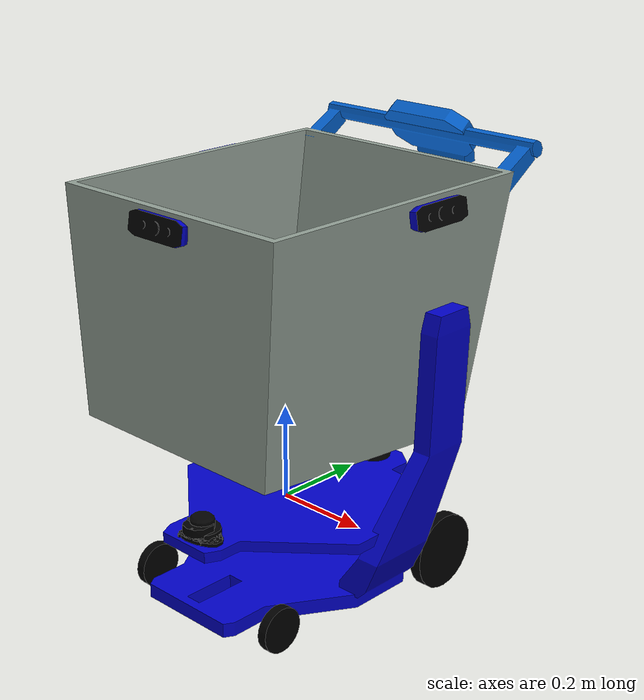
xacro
<?xml version="1.0"?>
<robot name="automatic_cart" xmlns:xacro="http://ros.org/wiki/xacro">

  <!-- Colors -->
  <material name="black">
    <color rgba="0 0 0 1"/>
  </material>

  <!-- Robot params -->
  <xacro:property name="baseshift" value="0.2" />
  <xacro:property name="wheellen" value="0.025" />
  <xacro:property name="wheelrad" value="0.08" />
  <xacro:property name="wheellen2" value="0.02" />
  <xacro:property name="wheelrad2" value="0.047" />
  <xacro:property name="xwheel" value="0.25" />
  <xacro:property name="ywheel" value="0.2" />
  <xacro:property name="zwheel" value="-0.11" />
  <xacro:property name="xwheel2" value="0.18" />
  <xacro:property name="ywheel2" value="-0.2" />
  <xacro:property name="zwheel2" value="-0.15" />
  <xacro:property name="pi" value="3.1415" />

  <!-- Sensor params -->
  <xacro:arg name="laser_visual" default="false"/>
  <xacro:arg name="imu_visual"   default="false"/>

  <!-- Physic params -->
  <xacro:macro name="default_inertial" params="mass">
    <inertial>
      <mass value="${mass}" />
      <inertia ixx="1.0" ixy="0.0" ixz="0.0" iyy="1.0" iyz="0.0" izz="1.0" />
    </inertial>
  </xacro:macro>

  <xacro:macro name="wheel_inertial" params="mass">
    <inertial>
      <mass value="${mass}" />
      <inertia ixx="0.0" ixy="0.0" ixz="0.0" iyy="1.0" iyz="0.0" izz="1.0" />
    </inertial>
  </xacro:macro>

  <!-- Robot Design -->
  <link name="base_footprint"/>

  <link name="base_link">
    <visual>
      <geometry>
        <mesh filename="package://automatic_cart/models/shopping_cart/meshes/shopping_cart_base.dae"/>
      </geometry>
      <origin rpy="0 0 ${pi}" xyz="0.0 0.0 ${baseshift}"/>
    </visual>
    <collision>
      <geometry>
        <mesh filename="package://automatic_cart/models/shopping_cart/meshes/shopping_cart_base.dae"/>
      </geometry>
      <origin rpy="0 0 ${pi}" xyz="0.0 0.0 ${baseshift}"/>
    </collision>
    <xacro:default_inertial mass="10"/>
  </link>

  <joint name="base_joint" type="fixed">
    <parent link="base_footprint"/>
    <child link="base_link"/>
    <origin xyz="0.0 0.0 0.0"/>
  </joint>

  <link name="basket">
    <visual>
      <geometry>
        <mesh filename="package://automatic_cart/models/shopping_cart/meshes/shopping_cart_basket.dae"/>
      </geometry>
      <origin rpy="0 0 ${pi}" xyz="0.0 0.0 ${-baseshift}"/>
    </visual>
    <collision>
      <geometry>
        <mesh filename="package://automatic_cart/models/shopping_cart/meshes/shopping_cart_basket.dae"/>
      </geometry>
      <origin rpy="0 0 ${pi}" xyz="0.0 0.0 ${-baseshift}"/>
    </collision>
    <xacro:default_inertial mass="4"/>
  </link>

  <joint name="base_to_basket" type="prismatic">
    <axis xyz="0 0 1"/>
    <limit effort="1000.0" lower="-0.07" upper="0.07" velocity="0.5"/>
    <parent link="base_link"/>
    <child link="basket"/>
    <origin xyz="0.0 0.0 ${2*baseshift}"/>
  </joint>

  <transmission name="base_to_basket_trans">
    <type>transmission_interface/SimpleTransmission</type>
    <actuator name="base_to_basket_motor">
      <mechanicalReduction>1</mechanicalReduction>
    </actuator>
    <joint name="base_to_basket">
      <hardwareInterface>hardware_interface/PositionJointInterface</hardwareInterface>
    </joint>
  </transmission>

  <!-- Wheels -->
  <xacro:macro name="wheel" params="prefix reflect">
  <link name="${prefix}_wheel">
    <visual>
      <origin rpy="0 ${pi/2} 0" xyz="0 0 0"/>
      <geometry>
	<cylinder length="${wheellen}" radius="${wheelrad}"/>
      </geometry>
      <material name="black"/>
    </visual>
    <collision>
      <origin rpy="0 ${pi/2} 0" xyz="0 0 0"/>
      <geometry>
	<cylinder length="${wheellen}" radius="${wheelrad}"/>
      </geometry>
    </collision>
    <xacro:wheel_inertial mass="2"/>
  </link>
  <joint name="${prefix}_wheel_joint" type="continuous">
    <axis rpy="0 0 0" xyz="1 0 0"/>
    <parent link="base_link"/>
    <child link="${prefix}_wheel"/>
    <origin rpy="0 0 0" xyz="${xwheel*reflect} ${ywheel} ${zwheel}"/>
  </joint>

    <!-- This block provides the simulator (Gazebo) with information on a few additional
    physical properties. See http://gazebosim.org/tutorials/?tut=ros_urdf for more-->
    <gazebo reference="${prefix}_wheel">
      <mu1 value="200.0"/>
      <mu2 value="100.0"/>
      <kp value="10000000.0" />
      <kd value="1.0" />
      <min_depth value="0.02" />
      <material>Gazebo/Grey</material>
    </gazebo>

    <!-- This block connects the wheel joint to an actuator (motor), which informs both
    simulation and visualization of the robot -->
    <transmission name="${prefix}_wheel_trans">
      <type>transmission_interface/SimpleTransmission</type>
      <actuator name="${prefix}_wheel_motor">
        <mechanicalReduction>1</mechanicalReduction>
      </actuator>
      <joint name="${prefix}_wheel_joint">
        <hardwareInterface>hardware_interface/VelocityJointInterface</hardwareInterface>
      </joint>
    </transmission>
  </xacro:macro>
  <xacro:wheel prefix="right" reflect="-1"/>
  <xacro:wheel prefix="left" reflect="1"/>

  <!-- Front Wheel -->
  <xacro:macro name="wheel_front" params="prefix reflect">
  <link name="${prefix}_front_wheel">
    <visual>
      <origin rpy="0 ${pi/2} 0" xyz="0 0 0"/>
      <geometry>
        <cylinder length="${wheellen2}" radius="${wheelrad2}"/>
      </geometry>
      <material name="black"/>
    </visual>
    <collision>
      <origin rpy="0 ${pi/2} 0" xyz="0 0 0"/>
      <geometry>
        <cylinder length="${wheellen2}" radius="${wheelrad2}"/>
      </geometry>
    </collision>
    <xacro:wheel_inertial mass="1"/>
  </link>
  <joint name="${prefix}_front_wheel_joint" type="continuous">
    <axis rpy="0 0 0" xyz="1 0 0"/>
    <parent link="base_link"/>
    <child link="${prefix}_front_wheel"/>
    <origin rpy="0 0 0" xyz="${xwheel2*reflect} ${ywheel2} ${zwheel2}"/>
  </joint>
  <!-- This block provides the simulator (Gazebo) with information on a few additional
    physical properties. See http://gazebosim.org/tutorials/?tut=ros_urdf for more-->
    <gazebo reference="${prefix}_front_wheel">
      <mu1 value="200.0"/>
      <mu2 value="100.0"/>
      <kp value="10000000.0" />
      <kd value="1.0" />
      <material>Gazebo/Grey</material>
    </gazebo>
    <!-- This block connects the wheel joint to an actuator (motor), which informs both
    simulation and visualization of the robot -->
    <transmission name="${prefix}_front_wheel_trans">
      <type>transmission_interface/SimpleTransmission</type>
      <actuator name="${prefix}_front_wheel_motor">
        <mechanicalReduction>1</mechanicalReduction>
      </actuator>
      <joint name="${prefix}_front_wheel_joint">
        <hardwareInterface>hardware_interface/VelocityJointInterface</hardwareInterface>
      </joint>
    </transmission>
   </xacro:macro>
   <xacro:wheel_front prefix="right" reflect="-1"/>
  <xacro:wheel_front prefix="left" reflect="1"/>

<!-- Lidar design -->
<joint name="scan_joint" type="fixed">
    <parent link="base_link"/>
    <child link="base_scan"/>
    <origin xyz="0  ${ywheel2-0.04} ${zwheel2+0.17}" rpy="0 0 0"/>
  </joint>

  <link name="base_scan">
    <visual>
      <origin xyz="0 0 0.0" rpy="0 0 0"/>
      <geometry>
        <mesh filename="package://turtlebot3_description/meshes/sensors/lds.stl" scale="0.001 0.001 0.001"/>
      </geometry>
      <material name="black"/>
    </visual>
  </link>

  <!-- IMU design -->
  <joint name="imu_joint" type="fixed">
    <parent link="base_link"/>
    <child link="imu_link"/>
    <origin xyz="0 0 ${zwheel2+0.17}" rpy="0 0 0"/>
  </joint>

  <link name="imu_link"/>

  <!-- Gazebo plugin for ROS Control -->
  <gazebo>
    <plugin name="gazebo_ros_control" filename="libgazebo_ros_control.so">
      <robotNamespace>/</robotNamespace>
    </plugin>
  </gazebo>

 <!-- Gazebo plugin for Lidar -->
  <gazebo reference="base_scan">
    <material>Gazebo/FlatBlack</material>
    <sensor type="ray" name="lds_lfcd_sensor">
      <pose>0 0 0 0 0 0</pose>
      <visualize>$(arg laser_visual)</visualize>
      <update_rate>5</update_rate>
      <ray>
        <scan>
          <horizontal>
            <samples>360</samples>
            <resolution>1</resolution>
            <min_angle>0.0</min_angle>
            <max_angle>6.28319</max_angle>
          </horizontal>
        </scan>
        <range>
          <min>0.120</min>
          <max>3.5</max>
          <resolution>0.015</resolution>
        </range>
        <noise>
          <type>gaussian</type>
          <mean>0.0</mean>
          <stddev>0.01</stddev>
        </noise>
      </ray>
      <plugin name="gazebo_ros_lds_lfcd_controller" filename="libgazebo_ros_laser.so">
        <topicName>scan</topicName>
        <frameName>base_scan</frameName>
      </plugin>
    </sensor>
  </gazebo>

  <!-- Gazebo plugin for IMU -->
  <gazebo reference="imu_link">
    <sensor type="imu" name="imu">
      <always_on>true</always_on>
      <visualize>$(arg imu_visual)</visualize>
    </sensor>
    <material>Gazebo/FlatBlack</material>
  </gazebo>

  <gazebo>
    <plugin name="imu_plugin" filename="libgazebo_ros_imu.so">
      <alwaysOn>true</alwaysOn>
      <bodyName>imu_link</bodyName>
      <frameName>imu_link</frameName>
      <topicName>imu</topicName>
      <serviceName>imu_service</serviceName>
      <gaussianNoise>0.0</gaussianNoise>
      <updateRate>0</updateRate>
      <imu>
        <noise>
          <type>gaussian</type>
          <rate>
            <mean>0.0</mean>
            <stddev>2e-4</stddev>
            <bias_mean>0.0000075</bias_mean>
            <bias_stddev>0.0000008</bias_stddev>
          </rate>
          <accel>
            <mean>0.0</mean>
            <stddev>1.7e-2</stddev>
            <bias_mean>0.1</bias_mean>
            <bias_stddev>0.001</bias_stddev>
          </accel>
        </noise>
      </imu>
    </plugin>
  </gazebo>

  <!-- Cart controller -->
  <gazebo>
    <plugin name="cart_diff_drive_controller" filename="libgazebo_ros_skid_steer_drive.so">
    <commandTopic>cmd_vel</commandTopic>
	<odometryTopic>odom</odometryTopic>
	<odometryFrame>odom</odometryFrame>
	<odometrySource>world</odometrySource>
	<publishOdomTF>true</publishOdomTF>
	<robotBaseFrame>base_footprint</robotBaseFrame>
	<publishWheelTF>false</publishWheelTF>
	<publishTf>true</publishTf>
	<publishWheelJointState>true</publishWheelJointState>
	<legacyMode>false</legacyMode>
	<updateRate>30</updateRate>
	<leftFrontJoint>left_front_wheel_joint</leftFrontJoint>
    	<rightFrontJoint>right_front_wheel_joint</rightFrontJoint>
    	<leftRearJoint>left_wheel_joint</leftRearJoint>
    	<rightRearJoint>right_wheel_joint</rightRearJoint>
	<wheelSeparation>${xwheel*2}</wheelSeparation>
	<wheelDiameter>${wheelrad*2}</wheelDiameter>
	<wheelAcceleration>1</wheelAcceleration>
	<wheelTorque>10</wheelTorque>
	<rosDebugLevel>na</rosDebugLevel>
  </plugin>
  </gazebo>

</robot>
